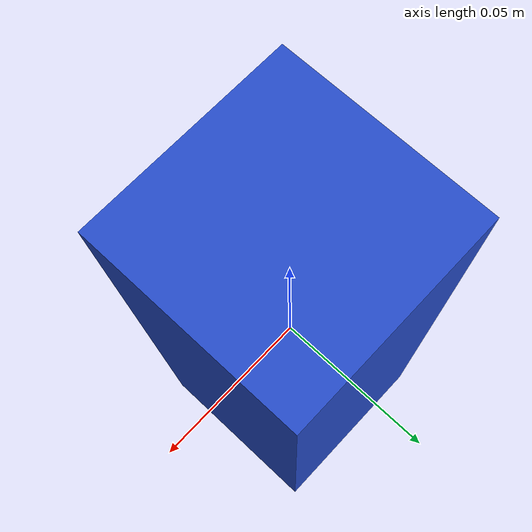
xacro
<robot name="my_sensors" xmlns:xacro="http://wiki.ros.org/xacro">

   <xacro:macro name="usb_camera" params="prefix:=camera">
        <link name="${prefix}_link">
            <inertial>
                <origin xyz="0 0 0" />
                <mass value="0.1" />
                <inertia ixx="0.01" ixy="0.0" ixz="0.0"
                                 iyy="0.01" iyz="0.0"
                                 izz="0.01" />
            </inertial>
            <visual>
                <origin xyz="0 0 0"  rpy="0 0 0" />
                <geometry>
                    <box size="0.06 0.06 0.15" />
                </geometry>
                <material name="blue" />
            </visual>
            <collision>
                <origin xyz="0.0 0.0 0.0"  rpy="0 0 0" />
                <geometry>
                    <box size="0.06 0.06 0.15" />
                </geometry>
            </collision>
        </link>
    </xacro:macro>
    <xacro:usb_camera prefix="camera"/>

    <gazebo reference="camera_link">
      <sensor type="depth" name="camera">
        <always_on>true</always_on>
        <update_rate>20.0</update_rate>
        <camera>
          <horizontal_fov>${60.0*PI/180.0}</horizontal_fov>
          <image>
            <format>R8G8B8</format>
            <width>640</width>
            <height>480</height>
          </image>
          <clip>
            <near>0.05</near>
            <far>8.0</far>
          </clip>
        </camera>
        <plugin name="kinect_camera_controller" filename="libgazebo_ros_openni_kinect.so">
          <cameraName>camera</cameraName>
          <alwaysOn>true</alwaysOn>
          <updateRate>10</updateRate>
          <imageTopicName>rgb/image_raw</imageTopicName>
          <depthImageTopicName>depth/image_raw</depthImageTopicName>
          <pointCloudTopicName>depth/points</pointCloudTopicName>
          <cameraInfoTopicName>rgb/camera_info</cameraInfoTopicName>
          <depthImageCameraInfoTopicName>depth/camera_info</depthImageCameraInfoTopicName>
          <frameName>support_depth</frameName>
          <baseline>0.1</baseline>
          <distortion_k1>0.0</distortion_k1>
          <distortion_k2>0.0</distortion_k2>
          <distortion_k3>0.0</distortion_k3>
          <distortion_t1>0.0</distortion_t1>
          <distortion_t2>0.0</distortion_t2>
          <pointCloudCutoff>0.4</pointCloudCutoff>
        </plugin>
      </sensor>
    </gazebo>

</robot>
